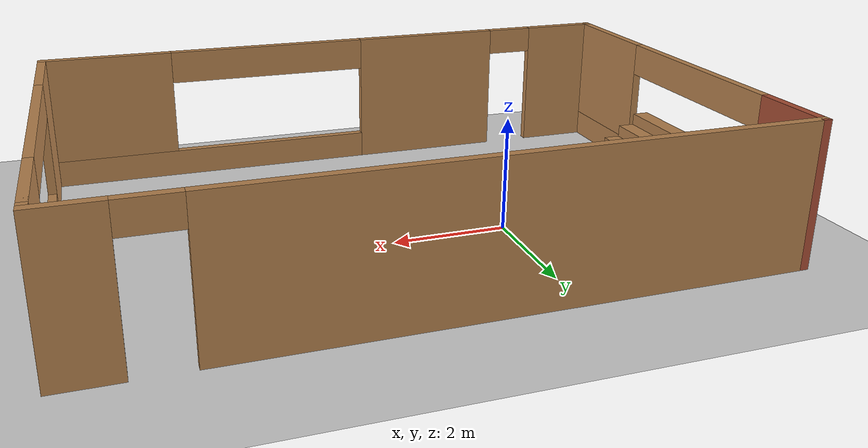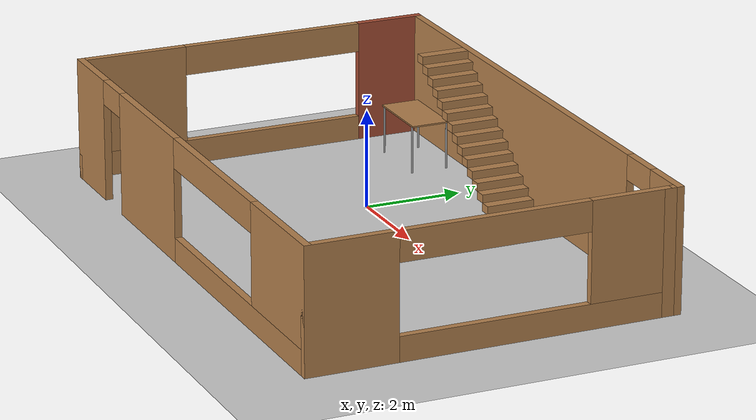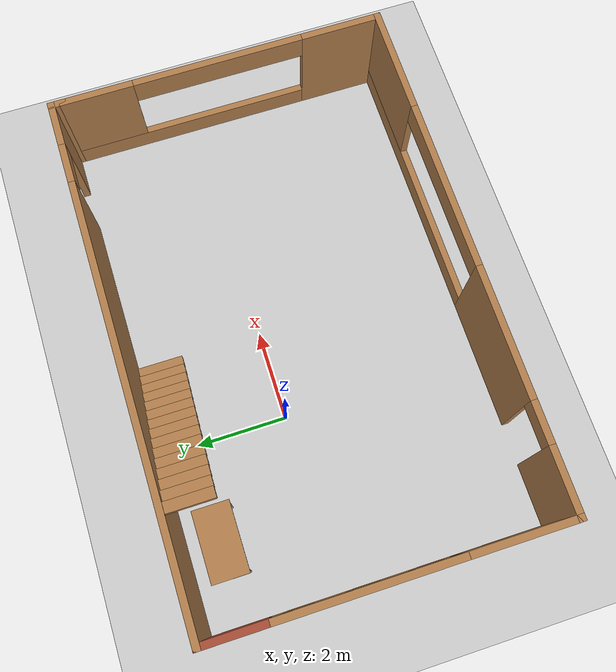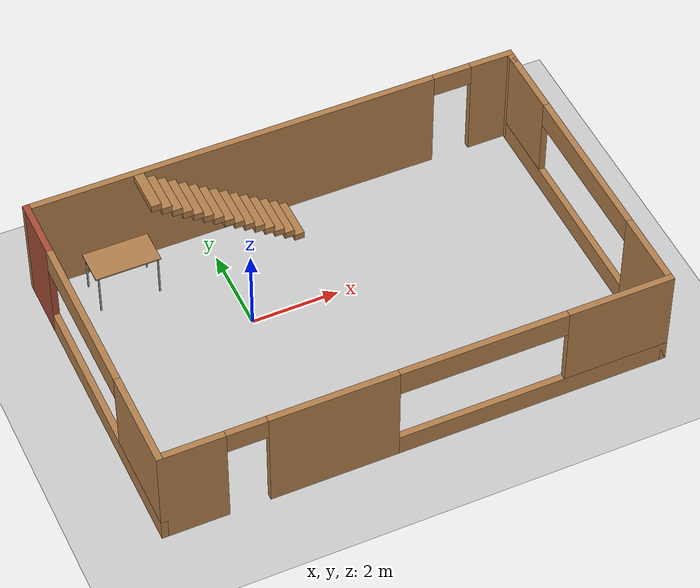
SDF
<sdf version="1.7">
 <world name="default">
  <light name="sun" type="directional">
   <pose>0 0 10 0 -0 0</pose>
   <diffuse>0.8 0.8 0.8 1</diffuse>
   <specular>0.2 0.2 0.2 1</specular>
   <attenuation>
    <range>1000</range>
    <constant>0.9</constant>
    <linear>0.01</linear>
    <quadratic>0.001</quadratic>
   </attenuation>
   <direction>-0.5 0.1 -0.9</direction>
   <spot><inner_angle>0</inner_angle><outer_angle>0</outer_angle><falloff>0</falloff></spot>
  </light>
  <model name="ground_plane">
   <static>1</static>
   <link name="link">
    <collision name="collision">
     <geometry><plane><normal>0 0 1</normal><size>100 100</size></plane></geometry>
     <surface><friction><ode><mu>100000</mu><mu2>100000</mu2></ode></friction></surface>
    </collision>
    <visual name="visual">
     <cast_shadows>0</cast_shadows>
     <geometry><plane><normal>0 0 1</normal><size>100 100</size></plane></geometry>
     <material>
      <script><uri>file://media/materials/scripts/gazebo.material</uri><name>Gazebo/Grey</name></script>
     </material>
    </visual>
   </link>
  </model>
  <gravity>0 0 -9.8</gravity>
  <magnetic_field>6e-06 2.3e-05 -4.2e-05</magnetic_field>
  <atmosphere type="adiabatic"/>
  <physics type="ode">
   <real_time_update_rate>1000</real_time_update_rate>
   <max_step_size>0.001</max_step_size>
   <solver><type>quick</type><iters>50</iters><sor>1.3</sor></solver>
  </physics>
  <scene><ambient>0.4 0.4 0.4 1</ambient><background>0.7 0.7 0.7 1</background><shadows>1</shadows></scene>
  <audio><device>default</device></audio>
  <spherical_coordinates>
   <surface_model>EARTH_WGS84</surface_model>
   <latitude_deg>0</latitude_deg>
   <longitude_deg>0</longitude_deg>
   <elevation>0</elevation>
   <heading_deg>0</heading_deg>
  </spherical_coordinates>
  <model name="lab_test">
   <pose>1.79133 -0.819406 0 0 -0 0</pose>
   <link name="Stairs_1">
    <visual name="Stairs_1_Visual_0">
     <pose>0.096991 3.09886 0.083333 0 -0 -1.5708</pose>
     <geometry><box><size>1 0.233333 0.166667</size></box></geometry>
     <material>
      <script><uri>file://media/materials/scripts/gazebo.material</uri><name>Gazebo/Wood</name></script>
      <ambient>1 1 1 1</ambient>
     </material>
     <meta><layer>0</layer></meta>
    </visual>
    <collision name="Stairs_1_Collision_0">
     <geometry><box><size>1 0.233333 0.166667</size></box></geometry>
     <pose>0.096991 3.09886 0.083333 0 -0 -1.5708</pose>
    </collision>
    <visual name="Stairs_1_Visual_1">
     <pose>-0.136343 3.09886 0.25 0 -0 -1.5708</pose>
     <geometry><box><size>1 0.233333 0.166667</size></box></geometry>
     <material>
      <script><uri>file://media/materials/scripts/gazebo.material</uri><name>Gazebo/Wood</name></script>
      <ambient>1 1 1 1</ambient>
     </material>
     <meta><layer>0</layer></meta>
    </visual>
    <collision name="Stairs_1_Collision_1">
     <geometry><box><size>1 0.233333 0.166667</size></box></geometry>
     <pose>-0.136343 3.09886 0.25 0 -0 -1.5708</pose>
    </collision>
    <visual name="Stairs_1_Visual_2">
     <pose>-0.369676 3.09886 0.416667 0 -0 -1.5708</pose>
     <geometry><box><size>1 0.233333 0.166667</size></box></geometry>
     <material>
      <script><uri>file://media/materials/scripts/gazebo.material</uri><name>Gazebo/Wood</name></script>
      <ambient>1 1 1 1</ambient>
     </material>
     <meta><layer>0</layer></meta>
    </visual>
    <collision name="Stairs_1_Collision_2">
     <geometry><box><size>1 0.233333 0.166667</size></box></geometry>
     <pose>-0.369676 3.09886 0.416667 0 -0 -1.5708</pose>
    </collision>
    <visual name="Stairs_1_Visual_3">
     <pose>-0.603009 3.09886 0.583333 0 -0 -1.5708</pose>
     <geometry><box><size>1 0.233333 0.166667</size></box></geometry>
     <material>
      <script><uri>file://media/materials/scripts/gazebo.material</uri><name>Gazebo/Wood</name></script>
      <ambient>1 1 1 1</ambient>
     </material>
     <meta><layer>0</layer></meta>
    </visual>
    <collision name="Stairs_1_Collision_3">
     <geometry><box><size>1 0.233333 0.166667</size></box></geometry>
     <pose>-0.603009 3.09886 0.583333 0 -0 -1.5708</pose>
    </collision>
    <visual name="Stairs_1_Visual_4">
     <pose>-0.836343 3.09886 0.75 0 -0 -1.5708</pose>
     <geometry><box><size>1 0.233333 0.166667</size></box></geometry>
     <material>
      <script><uri>file://media/materials/scripts/gazebo.material</uri><name>Gazebo/Wood</name></script>
      <ambient>1 1 1 1</ambient>
     </material>
     <meta><layer>0</layer></meta>
    </visual>
    <collision name="Stairs_1_Collision_4">
     <geometry><box><size>1 0.233333 0.166667</size></box></geometry>
     <pose>-0.836343 3.09886 0.75 0 -0 -1.5708</pose>
    </collision>
    <visual name="Stairs_1_Visual_5">
     <pose>-1.06968 3.09886 0.916667 0 -0 -1.5708</pose>
     <geometry><box><size>1 0.233333 0.166667</size></box></geometry>
     <material>
      <script><uri>file://media/materials/scripts/gazebo.material</uri><name>Gazebo/Wood</name></script>
      <ambient>1 1 1 1</ambient>
     </material>
     <meta><layer>0</layer></meta>
    </visual>
    <collision name="Stairs_1_Collision_5">
     <geometry><box><size>1 0.233333 0.166667</size></box></geometry>
     <pose>-1.06968 3.09886 0.916667 0 -0 -1.5708</pose>
    </collision>
    <visual name="Stairs_1_Visual_6">
     <pose>-1.30301 3.09886 1.08333 0 -0 -1.5708</pose>
     <geometry><box><size>1 0.233333 0.166667</size></box></geometry>
     <material>
      <script><uri>file://media/materials/scripts/gazebo.material</uri><name>Gazebo/Wood</name></script>
      <ambient>1 1 1 1</ambient>
     </material>
     <meta><layer>0</layer></meta>
    </visual>
    <collision name="Stairs_1_Collision_6">
     <geometry><box><size>1 0.233333 0.166667</size></box></geometry>
     <pose>-1.30301 3.09886 1.08333 0 -0 -1.5708</pose>
    </collision>
    <visual name="Stairs_1_Visual_7">
     <pose>-1.53634 3.09886 1.25 0 -0 -1.5708</pose>
     <geometry><box><size>1 0.233333 0.166667</size></box></geometry>
     <material>
      <script><uri>file://media/materials/scripts/gazebo.material</uri><name>Gazebo/Wood</name></script>
      <ambient>1 1 1 1</ambient>
     </material>
     <meta><layer>0</layer></meta>
    </visual>
    <collision name="Stairs_1_Collision_7">
     <geometry><box><size>1 0.233333 0.166667</size></box></geometry>
     <pose>-1.53634 3.09886 1.25 0 -0 -1.5708</pose>
    </collision>
    <visual name="Stairs_1_Visual_8">
     <pose>-1.76968 3.09886 1.41667 0 -0 -1.5708</pose>
     <geometry><box><size>1 0.233333 0.166667</size></box></geometry>
     <material>
      <script><uri>file://media/materials/scripts/gazebo.material</uri><name>Gazebo/Wood</name></script>
      <ambient>1 1 1 1</ambient>
     </material>
     <meta><layer>0</layer></meta>
    </visual>
    <collision name="Stairs_1_Collision_8">
     <geometry><box><size>1 0.233333 0.166667</size></box></geometry>
     <pose>-1.76968 3.09886 1.41667 0 -0 -1.5708</pose>
    </collision>
    <visual name="Stairs_1_Visual_9">
     <pose>-2.00301 3.09886 1.58333 0 -0 -1.5708</pose>
     <geometry><box><size>1 0.233333 0.166667</size></box></geometry>
     <material>
      <script><uri>file://media/materials/scripts/gazebo.material</uri><name>Gazebo/Wood</name></script>
      <ambient>1 1 1 1</ambient>
     </material>
     <meta><layer>0</layer></meta>
    </visual>
    <collision name="Stairs_1_Collision_9">
     <geometry><box><size>1 0.233333 0.166667</size></box></geometry>
     <pose>-2.00301 3.09886 1.58333 0 -0 -1.5708</pose>
    </collision>
    <visual name="Stairs_1_Visual_10">
     <pose>-2.23634 3.09886 1.75 0 -0 -1.5708</pose>
     <geometry><box><size>1 0.233333 0.166667</size></box></geometry>
     <material>
      <script><uri>file://media/materials/scripts/gazebo.material</uri><name>Gazebo/Wood</name></script>
      <ambient>1 1 1 1</ambient>
     </material>
     <meta><layer>0</layer></meta>
    </visual>
    <collision name="Stairs_1_Collision_10">
     <geometry><box><size>1 0.233333 0.166667</size></box></geometry>
     <pose>-2.23634 3.09886 1.75 0 -0 -1.5708</pose>
    </collision>
    <visual name="Stairs_1_Visual_11">
     <pose>-2.46968 3.09886 1.91667 0 -0 -1.5708</pose>
     <geometry><box><size>1 0.233333 0.166667</size></box></geometry>
     <material>
      <script><uri>file://media/materials/scripts/gazebo.material</uri><name>Gazebo/Wood</name></script>
      <ambient>1 1 1 1</ambient>
     </material>
     <meta><layer>0</layer></meta>
    </visual>
    <collision name="Stairs_1_Collision_11">
     <geometry><box><size>1 0.233333 0.166667</size></box></geometry>
     <pose>-2.46968 3.09886 1.91667 0 -0 -1.5708</pose>
    </collision>
    <visual name="Stairs_1_Visual_12">
     <pose>-2.70301 3.09886 2.08333 0 -0 -1.5708</pose>
     <geometry><box><size>1 0.233333 0.166667</size></box></geometry>
     <material>
      <script><uri>file://media/materials/scripts/gazebo.material</uri><name>Gazebo/Wood</name></script>
      <ambient>1 1 1 1</ambient>
     </material>
     <meta><layer>0</layer></meta>
    </visual>
    <collision name="Stairs_1_Collision_12">
     <geometry><box><size>1 0.233333 0.166667</size></box></geometry>
     <pose>-2.70301 3.09886 2.08333 0 -0 -1.5708</pose>
    </collision>
    <visual name="Stairs_1_Visual_13">
     <pose>-2.93634 3.09886 2.25 0 -0 -1.5708</pose>
     <geometry><box><size>1 0.233333 0.166667</size></box></geometry>
     <material>
      <script><uri>file://media/materials/scripts/gazebo.material</uri><name>Gazebo/Wood</name></script>
      <ambient>1 1 1 1</ambient>
     </material>
     <meta><layer>0</layer></meta>
    </visual>
    <collision name="Stairs_1_Collision_13">
     <geometry><box><size>1 0.233333 0.166667</size></box></geometry>
     <pose>-2.93634 3.09886 2.25 0 -0 -1.5708</pose>
    </collision>
    <visual name="Stairs_1_Visual_14">
     <pose>-3.16968 3.09886 2.41667 0 -0 -1.5708</pose>
     <geometry><box><size>1 0.233333 0.166667</size></box></geometry>
     <material>
      <script><uri>file://media/materials/scripts/gazebo.material</uri><name>Gazebo/Wood</name></script>
      <ambient>1 1 1 1</ambient>
     </material>
     <meta><layer>0</layer></meta>
    </visual>
    <collision name="Stairs_1_Collision_14">
     <geometry><box><size>1 0.233333 0.166667</size></box></geometry>
     <pose>-3.16968 3.09886 2.41667 0 -0 -1.5708</pose>
    </collision>
   </link>
   <link name="Wall_1">
    <pose>-5.675 -0 0 0 -0 -1.5708</pose>
    <visual name="Wall_1_Visual_0">
     <pose>-3.03638 0 1.25 0 -0 0</pose>
     <geometry><box><size>1.42725 0.15 2.5</size></box></geometry>
     <material>
      <script><uri>file://media/materials/scripts/gazebo.material</uri><name>Gazebo/Bricks</name></script>
      <ambient>1 1 1 1</ambient>
     </material>
     <meta><layer>0</layer></meta>
    </visual>
    <collision name="Wall_1_Collision_0">
     <geometry><box><size>1.42725 0.15 2.5</size></box></geometry>
     <pose>-3.03638 0 1.25 0 -0 0</pose>
    </collision>
    <visual name="Wall_1_Visual_1">
     <pose>0.713624 0 0.25 0 -0 0</pose>
     <geometry><box><size>6.07275 0.15 0.5</size></box></geometry>
     <material>
      <script><uri>file://media/materials/scripts/gazebo.material</uri><name>Gazebo/Wood</name></script>
      <ambient>1 1 1 1</ambient>
     </material>
     <meta><layer>0</layer></meta>
    </visual>
    <collision name="Wall_1_Collision_1">
     <geometry><box><size>6.07275 0.15 0.5</size></box></geometry>
     <pose>0.713624 0 0.25 0 -0 0</pose>
    </collision>
    <visual name="Wall_1_Visual_2">
     <pose>2.61362 0 1.5 0 -0 0</pose>
     <geometry><box><size>2.27275 0.15 2</size></box></geometry>
     <material>
      <script><uri>file://media/materials/scripts/gazebo.material</uri><name>Gazebo/Wood</name></script>
      <ambient>1 1 1 1</ambient>
     </material>
     <meta><layer>0</layer></meta>
    </visual>
    <collision name="Wall_1_Collision_2">
     <geometry><box><size>2.27275 0.15 2</size></box></geometry>
     <pose>2.61362 0 1.5 0 -0 0</pose>
    </collision>
    <visual name="Wall_1_Visual_3">
     <pose>-0.422752 0 2.2 0 -0 0</pose>
     <geometry><box><size>3.8 0.15 0.6</size></box></geometry>
     <material>
      <script><uri>file://media/materials/scripts/gazebo.material</uri><name>Gazebo/Wood</name></script>
      <ambient>1 1 1 1</ambient>
     </material>
     <meta><layer>0</layer></meta>
    </visual>
    <collision name="Wall_1_Collision_3">
     <geometry><box><size>3.8 0.15 0.6</size></box></geometry>
     <pose>-0.422752 0 2.2 0 -0 0</pose>
    </collision>
   </link>
   <link name="Wall_10">
    <pose>-0 3.675 0 0 -0 0</pose>
    <visual name="Wall_10_Visual_0">
     <pose>-0.973784 0 1.25 0 -0 0</pose>
     <geometry><box><size>9.55243 0.15 2.5</size></box></geometry>
     <material>
      <script><uri>file://media/materials/scripts/gazebo.material</uri><name>Gazebo/Wood</name></script>
      <ambient>1 1 1 1</ambient>
     </material>
     <meta><layer>0</layer></meta>
    </visual>
    <collision name="Wall_10_Collision_0">
     <geometry><box><size>9.55243 0.15 2.5</size></box></geometry>
     <pose>-0.973784 0 1.25 0 -0 0</pose>
    </collision>
    <visual name="Wall_10_Visual_1">
     <pose>5.22622 0 1.25 0 -0 0</pose>
     <geometry><box><size>1.04757 0.15 2.5</size></box></geometry>
     <material>
      <script><uri>file://media/materials/scripts/gazebo.material</uri><name>Gazebo/Wood</name></script>
      <ambient>1 1 1 1</ambient>
     </material>
     <meta><layer>0</layer></meta>
    </visual>
    <collision name="Wall_10_Collision_1">
     <geometry><box><size>1.04757 0.15 2.5</size></box></geometry>
     <pose>5.22622 0 1.25 0 -0 0</pose>
    </collision>
    <visual name="Wall_10_Visual_2">
     <pose>4.25243 0 2.25 0 -0 0</pose>
     <geometry><box><size>0.9 0.15 0.5</size></box></geometry>
     <material>
      <script><uri>file://media/materials/scripts/gazebo.material</uri><name>Gazebo/Wood</name></script>
      <ambient>1 1 1 1</ambient>
     </material>
     <meta><layer>0</layer></meta>
    </visual>
    <collision name="Wall_10_Collision_2">
     <geometry><box><size>0.9 0.15 0.5</size></box></geometry>
     <pose>4.25243 0 2.25 0 -0 0</pose>
    </collision>
   </link>
   <link name="Wall_11">
    <collision name="Wall_11_Collision">
     <geometry><box><size>0.4 0.15 2.5</size></box></geometry>
     <pose>0 0 1.25 0 -0 0</pose>
    </collision>
    <visual name="Wall_11_Visual">
     <pose>0 0 1.25 0 -0 0</pose>
     <geometry><box><size>0.4 0.15 2.5</size></box></geometry>
     <material>
      <script><uri>file://media/materials/scripts/gazebo.material</uri><name>Gazebo/Wood</name></script>
      <ambient>1 1 1 1</ambient>
     </material>
     <meta><layer>0</layer></meta>
    </visual>
    <pose>5.675 3.55 0 0 -0 -1.5708</pose>
   </link>
   <link name="Wall_6">
    <pose>-0 -3.675 0 0 -0 0</pose>
    <visual name="Wall_6_Visual_0">
     <pose>-5.00524 0 1.25 0 -0 0</pose>
     <geometry><box><size>1.48951 0.15 2.5</size></box></geometry>
     <material>
      <script><uri>file://media/materials/scripts/gazebo.material</uri><name>Gazebo/Wood</name></script>
      <ambient>1 1 1 1</ambient>
     </material>
     <meta><layer>0</layer></meta>
    </visual>
    <collision name="Wall_6_Collision_0">
     <geometry><box><size>1.48951 0.15 2.5</size></box></geometry>
     <pose>-5.00524 0 1.25 0 -0 0</pose>
    </collision>
    <visual name="Wall_6_Visual_1">
     <pose>-1.92072 0 1.25 0 -0 0</pose>
     <geometry><box><size>2.87953 0.15 2.5</size></box></geometry>
     <material>
      <script><uri>file://media/materials/scripts/gazebo.material</uri><name>Gazebo/Wood</name></script>
      <ambient>1 1 1 1</ambient>
     </material>
     <meta><layer>0</layer></meta>
    </visual>
    <collision name="Wall_6_Collision_1">
     <geometry><box><size>2.87953 0.15 2.5</size></box></geometry>
     <pose>-1.92072 0 1.25 0 -0 0</pose>
    </collision>
    <visual name="Wall_6_Visual_2">
     <pose>2.63452 0 0.25 0 -0 0</pose>
     <geometry><box><size>6.23096 0.15 0.5</size></box></geometry>
     <material>
      <script><uri>file://media/materials/scripts/gazebo.material</uri><name>Gazebo/Wood</name></script>
      <ambient>1 1 1 1</ambient>
     </material>
     <meta><layer>0</layer></meta>
    </visual>
    <collision name="Wall_6_Collision_2">
     <geometry><box><size>6.23096 0.15 0.5</size></box></geometry>
     <pose>2.63452 0 0.25 0 -0 0</pose>
    </collision>
    <visual name="Wall_6_Visual_3">
     <pose>4.53452 0 1.5 0 -0 0</pose>
     <geometry><box><size>2.43096 0.15 2</size></box></geometry>
     <material>
      <script><uri>file://media/materials/scripts/gazebo.material</uri><name>Gazebo/Wood</name></script>
      <ambient>1 1 1 1</ambient>
     </material>
     <meta><layer>0</layer></meta>
    </visual>
    <collision name="Wall_6_Collision_3">
     <geometry><box><size>2.43096 0.15 2</size></box></geometry>
     <pose>4.53452 0 1.5 0 -0 0</pose>
    </collision>
    <visual name="Wall_6_Visual_4">
     <pose>1.41904 0 2.2 0 -0 0</pose>
     <geometry><box><size>3.8 0.15 0.6</size></box></geometry>
     <material>
      <script><uri>file://media/materials/scripts/gazebo.material</uri><name>Gazebo/Wood</name></script>
      <ambient>1 1 1 1</ambient>
     </material>
     <meta><layer>0</layer></meta>
    </visual>
    <collision name="Wall_6_Collision_4">
     <geometry><box><size>3.8 0.15 0.6</size></box></geometry>
     <pose>1.41904 0 2.2 0 -0 0</pose>
    </collision>
    <visual name="Wall_6_Visual_5">
     <pose>-3.81049 0 2.25 0 -0 0</pose>
     <geometry><box><size>0.9 0.15 0.5</size></box></geometry>
     <material>
      <script><uri>file://media/materials/scripts/gazebo.material</uri><name>Gazebo/Wood</name></script>
      <ambient>1 1 1 1</ambient>
     </material>
     <meta><layer>0</layer></meta>
    </visual>
    <collision name="Wall_6_Collision_5">
     <geometry><box><size>0.9 0.15 0.5</size></box></geometry>
     <pose>-3.81049 0 2.25 0 -0 0</pose>
    </collision>
   </link>
   <link name="Wall_7">
    <pose>5.675 -0.125 0 0 -0 1.5708</pose>
    <visual name="Wall_7_Visual_0">
     <pose>-2.70725 0 1.25 0 -0 0</pose>
     <geometry><box><size>1.8355 0.15 2.5</size></box></geometry>
     <material>
      <script><uri>file://media/materials/scripts/gazebo.material</uri><name>Gazebo/Wood</name></script>
      <ambient>1 1 1 1</ambient>
     </material>
     <meta><layer>0</layer></meta>
    </visual>
    <collision name="Wall_7_Collision_0">
     <geometry><box><size>1.8355 0.15 2.5</size></box></geometry>
     <pose>-2.70725 0 1.25 0 -0 0</pose>
    </collision>
    <visual name="Wall_7_Visual_1">
     <pose>0.91775 0 0.25 0 -0 0</pose>
     <geometry><box><size>5.4145 0.15 0.5</size></box></geometry>
     <material>
      <script><uri>file://media/materials/scripts/gazebo.material</uri><name>Gazebo/Wood</name></script>
      <ambient>1 1 1 1</ambient>
     </material>
     <meta><layer>0</layer></meta>
    </visual>
    <collision name="Wall_7_Collision_1">
     <geometry><box><size>5.4145 0.15 0.5</size></box></geometry>
     <pose>0.91775 0 0.25 0 -0 0</pose>
    </collision>
    <visual name="Wall_7_Visual_2">
     <pose>2.81775 0 1.5 0 -0 0</pose>
     <geometry><box><size>1.6145 0.15 2</size></box></geometry>
     <material>
      <script><uri>file://media/materials/scripts/gazebo.material</uri><name>Gazebo/Wood</name></script>
      <ambient>1 1 1 1</ambient>
     </material>
     <meta><layer>0</layer></meta>
    </visual>
    <collision name="Wall_7_Collision_2">
     <geometry><box><size>1.6145 0.15 2</size></box></geometry>
     <pose>2.81775 0 1.5 0 -0 0</pose>
    </collision>
    <visual name="Wall_7_Visual_3">
     <pose>0.1105 0 2.2 0 -0 0</pose>
     <geometry><box><size>3.8 0.15 0.6</size></box></geometry>
     <material>
      <script><uri>file://media/materials/scripts/gazebo.material</uri><name>Gazebo/Wood</name></script>
      <ambient>1 1 1 1</ambient>
     </material>
     <meta><layer>0</layer></meta>
    </visual>
    <collision name="Wall_7_Collision_3">
     <geometry><box><size>3.8 0.15 0.6</size></box></geometry>
     <pose>0.1105 0 2.2 0 -0 0</pose>
    </collision>
   </link>
   <static>1</static>
  </model>
  <model name="table">
   <static>1</static>
   <link name="link">
    <collision name="surface">
     <pose>0 0 1 0 -0 0</pose>
     <geometry><box><size>1.5 0.8 0.03</size></box></geometry>
     <surface><friction><ode><mu>0.6</mu><mu2>0.6</mu2></ode></friction></surface>
    </collision>
    <visual name="visual1">
     <pose>0 0 1 0 -0 0</pose>
     <geometry><box><size>1.5 0.8 0.03</size></box></geometry>
     <material>
      <script><uri>file://media/materials/scripts/gazebo.material</uri><name>Gazebo/Wood</name></script>
     </material>
    </visual>
    <collision name="front_left_leg">
     <pose>0.68 0.38 0.5 0 -0 0</pose>
     <geometry><cylinder><radius>0.02</radius><length>1</length></cylinder></geometry>
    </collision>
    <visual name="front_left_leg">
     <pose>0.68 0.38 0.5 0 -0 0</pose>
     <geometry><cylinder><radius>0.02</radius><length>1</length></cylinder></geometry>
     <material>
      <script><uri>file://media/materials/scripts/gazebo.material</uri><name>Gazebo/Grey</name></script>
     </material>
    </visual>
    <collision name="front_right_leg">
     <pose>0.68 -0.38 0.5 0 -0 0</pose>
     <geometry><cylinder><radius>0.02</radius><length>1</length></cylinder></geometry>
    </collision>
    <visual name="front_right_leg">
     <pose>0.68 -0.38 0.5 0 -0 0</pose>
     <geometry><cylinder><radius>0.02</radius><length>1</length></cylinder></geometry>
     <material>
      <script><uri>file://media/materials/scripts/gazebo.material</uri><name>Gazebo/Grey</name></script>
     </material>
    </visual>
    <collision name="back_right_leg">
     <pose>-0.68 -0.38 0.5 0 -0 0</pose>
     <geometry><cylinder><radius>0.02</radius><length>1</length></cylinder></geometry>
    </collision>
    <visual name="back_right_leg">
     <pose>-0.68 -0.38 0.5 0 -0 0</pose>
     <geometry><cylinder><radius>0.02</radius><length>1</length></cylinder></geometry>
     <material>
      <script><uri>file://media/materials/scripts/gazebo.material</uri><name>Gazebo/Grey</name></script>
     </material>
    </visual>
    <collision name="back_left_leg">
     <pose>-0.68 0.38 0.5 0 -0 0</pose>
     <geometry><cylinder><radius>0.02</radius><length>1</length></cylinder></geometry>
    </collision>
    <visual name="back_left_leg">
     <pose>-0.68 0.38 0.5 0 -0 0</pose>
     <geometry><cylinder><radius>0.02</radius><length>1</length></cylinder></geometry>
     <material>
      <script><uri>file://media/materials/scripts/gazebo.material</uri><name>Gazebo/Grey</name></script>
     </material>
    </visual>
   </link>
   <pose>-2.15547 2.03387 -0.00826 0 -0 0</pose>
  </model>
 </world>
</sdf>
